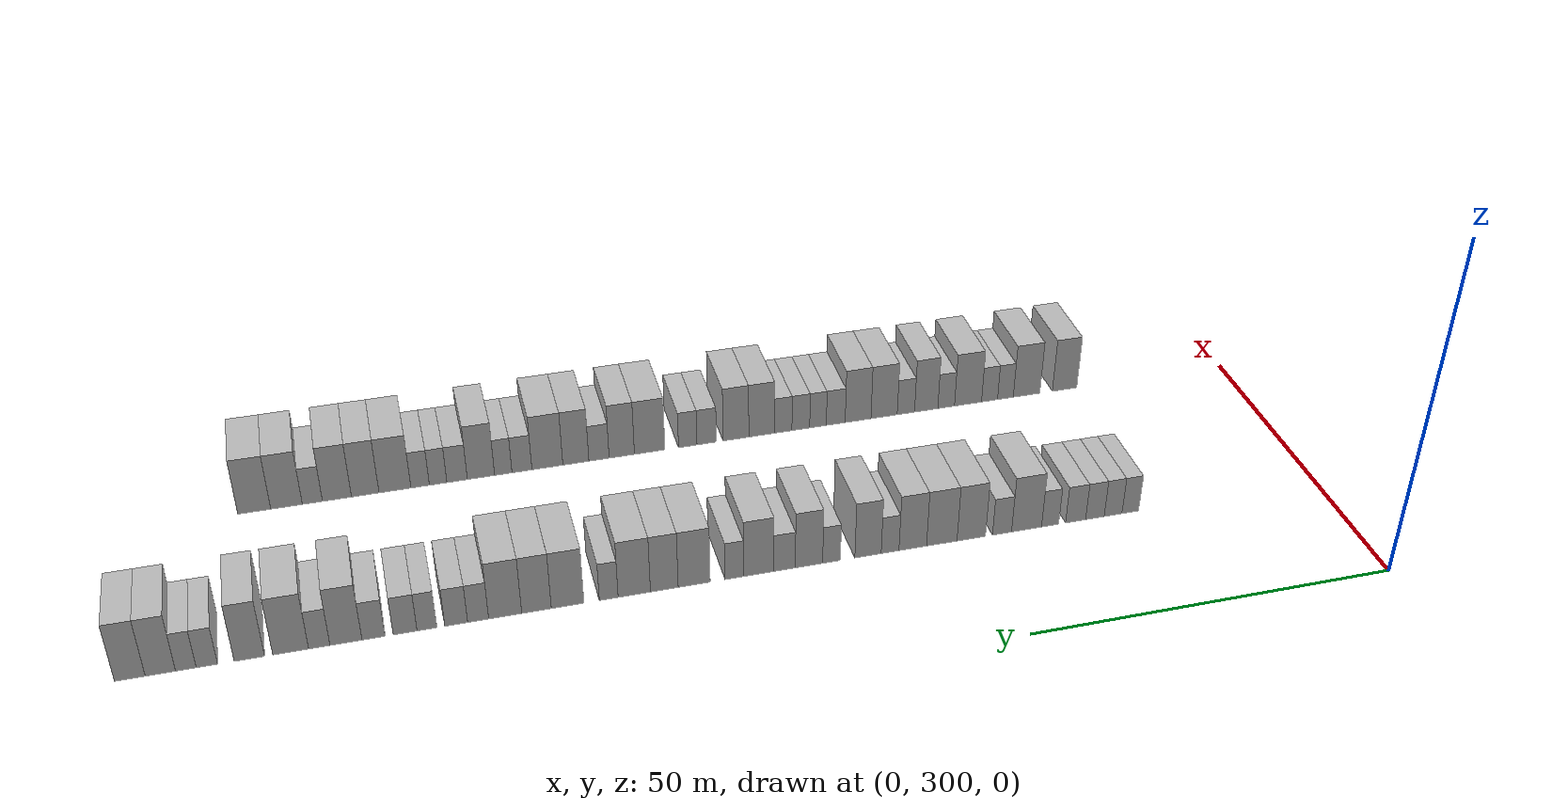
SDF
<sdf version="1.6">
 <world name="default">
  <model name="building_188">
   <static>1</static>
   <pose>25.0000 327.8488 0 0.000000 0.000000 0.000000</pose>
   <link name="link">
    <pose>0 0 3.00 0 0 0</pose>
    <collision name="collision"><geometry><box><size>10.0000 2.4442 6.0000</size></box></geometry></collision>
    <visual name="visual">
     <cast_shadows>0</cast_shadows>
     <geometry><box><size>10.0000 2.4442 6.0000</size></box></geometry>
     <material>
      <script>
       <uri>model://HANNAS_wall/materials/scripts</uri>
       <uri>model://HANNAS_wall/materials/textures</uri>
       <name>vrc/HANNAS_wall</name>
      </script>
     </material>
    </visual>
   </link>
  </model>
  <model name="building_189">
   <static>1</static>
   <pose>25.0000 330.3717 0 0.000000 0.000000 0.000000</pose>
   <link name="link">
    <pose>0 0 3.00 0 0 0</pose>
    <collision name="collision"><geometry><box><size>10.0000 2.6017 6.0000</size></box></geometry></collision>
    <visual name="visual">
     <cast_shadows>0</cast_shadows>
     <geometry><box><size>10.0000 2.6017 6.0000</size></box></geometry>
     <material>
      <script>
       <uri>model://HANNAS_wall/materials/scripts</uri>
       <uri>model://HANNAS_wall/materials/textures</uri>
       <name>vrc/HANNAS_wall</name>
      </script>
     </material>
    </visual>
   </link>
  </model>
  <model name="building_190">
   <static>1</static>
   <pose>25.0000 333.0318 0 0.000000 0.000000 0.000000</pose>
   <link name="link">
    <pose>0 0 3.00 0 0 0</pose>
    <collision name="collision"><geometry><box><size>10.0000 2.7185 6.0000</size></box></geometry></collision>
    <visual name="visual">
     <cast_shadows>0</cast_shadows>
     <geometry><box><size>10.0000 2.7185 6.0000</size></box></geometry>
     <material>
      <script>
       <uri>model://HANNAS_wall/materials/scripts</uri>
       <uri>model://HANNAS_wall/materials/textures</uri>
       <name>vrc/HANNAS_wall</name>
      </script>
     </material>
    </visual>
   </link>
  </model>
  <model name="building_191">
   <static>1</static>
   <pose>25.0000 335.8439 0 0.000000 0.000000 0.000000</pose>
   <link name="link">
    <pose>0 0 3.00 0 0 0</pose>
    <collision name="collision"><geometry><box><size>10.0000 2.9056 6.0000</size></box></geometry></collision>
    <visual name="visual">
     <cast_shadows>0</cast_shadows>
     <geometry><box><size>10.0000 2.9056 6.0000</size></box></geometry>
     <material>
      <script>
       <uri>model://HANNAS_wall/materials/scripts</uri>
       <uri>model://HANNAS_wall/materials/textures</uri>
       <name>vrc/HANNAS_wall</name>
      </script>
     </material>
    </visual>
   </link>
  </model>
  <model name="building_192">
   <static>1</static>
   <pose>25.0000 339.5345 0 0.000000 0.000000 0.000000</pose>
   <link name="link">
    <pose>0 0 3.00 0 0 0</pose>
    <collision name="collision"><geometry><box><size>10.0000 2.4756 6.0000</size></box></geometry></collision>
    <visual name="visual">
     <cast_shadows>0</cast_shadows>
     <geometry><box><size>10.0000 2.4756 6.0000</size></box></geometry>
     <material>
      <script>
       <uri>model://HANNAS_wall/materials/scripts</uri>
       <uri>model://HANNAS_wall/materials/textures</uri>
       <name>vrc/HANNAS_wall</name>
      </script>
     </material>
    </visual>
   </link>
  </model>
  <model name="building_193">
   <static>1</static>
   <pose>25.0000 342.9226 0 0.000000 0.000000 0.000000</pose>
   <link name="link">
    <pose>0 0 4.50 0 0 0</pose>
    <collision name="collision"><geometry><box><size>10.0000 4.3007 9.0000</size></box></geometry></collision>
    <visual name="visual">
     <cast_shadows>0</cast_shadows>
     <geometry><box><size>10.0000 4.3007 9.0000</size></box></geometry>
     <material>
      <script>
       <uri>model://HANNAS_wall/materials/scripts</uri>
       <uri>model://HANNAS_wall/materials/textures</uri>
       <name>vrc/HANNAS_wall</name>
      </script>
     </material>
    </visual>
   </link>
  </model>
  <model name="building_194">
   <static>1</static>
   <pose>25.0000 346.4377 0 0.000000 0.000000 0.000000</pose>
   <link name="link">
    <pose>0 0 3.00 0 0 0</pose>
    <collision name="collision"><geometry><box><size>10.0000 2.7295 6.0000</size></box></geometry></collision>
    <visual name="visual">
     <cast_shadows>0</cast_shadows>
     <geometry><box><size>10.0000 2.7295 6.0000</size></box></geometry>
     <material>
      <script>
       <uri>model://HANNAS_wall/materials/scripts</uri>
       <uri>model://HANNAS_wall/materials/textures</uri>
       <name>vrc/HANNAS_wall</name>
      </script>
     </material>
    </visual>
   </link>
  </model>
  <model name="building_195">
   <static>1</static>
   <pose>25.0000 350.8196 0 0.000000 0.000000 0.000000</pose>
   <link name="link">
    <pose>0 0 4.50 0 0 0</pose>
    <collision name="collision"><geometry><box><size>10.0000 4.0343 9.0000</size></box></geometry></collision>
    <visual name="visual">
     <cast_shadows>0</cast_shadows>
     <geometry><box><size>10.0000 4.0343 9.0000</size></box></geometry>
     <material>
      <script>
       <uri>model://HANNAS_wall/materials/scripts</uri>
       <uri>model://HANNAS_wall/materials/textures</uri>
       <name>vrc/HANNAS_wall</name>
      </script>
     </material>
    </visual>
   </link>
  </model>
  <model name="building_196">
   <static>1</static>
   <pose>25.0000 354.9863 0 0.000000 0.000000 0.000000</pose>
   <link name="link">
    <pose>0 0 4.50 0 0 0</pose>
    <collision name="collision"><geometry><box><size>10.0000 4.2991 9.0000</size></box></geometry></collision>
    <visual name="visual">
     <cast_shadows>0</cast_shadows>
     <geometry><box><size>10.0000 4.2991 9.0000</size></box></geometry>
     <material>
      <script>
       <uri>model://HANNAS_wall/materials/scripts</uri>
       <uri>model://HANNAS_wall/materials/textures</uri>
       <name>vrc/HANNAS_wall</name>
      </script>
     </material>
    </visual>
   </link>
  </model>
  <model name="building_197">
   <static>1</static>
   <pose>25.0000 359.0652 0 0.000000 0.000000 0.000000</pose>
   <link name="link">
    <pose>0 0 4.50 0 0 0</pose>
    <collision name="collision"><geometry><box><size>10.0000 3.8587 9.0000</size></box></geometry></collision>
    <visual name="visual">
     <cast_shadows>0</cast_shadows>
     <geometry><box><size>10.0000 3.8587 9.0000</size></box></geometry>
     <material>
      <script>
       <uri>model://HANNAS_wall/materials/scripts</uri>
       <uri>model://HANNAS_wall/materials/textures</uri>
       <name>vrc/HANNAS_wall</name>
      </script>
     </material>
    </visual>
   </link>
  </model>
  <model name="building_198">
   <static>1</static>
   <pose>25.0000 362.2316 0 0.000000 0.000000 0.000000</pose>
   <link name="link">
    <pose>0 0 3.00 0 0 0</pose>
    <collision name="collision"><geometry><box><size>10.0000 2.4742 6.0000</size></box></geometry></collision>
    <visual name="visual">
     <cast_shadows>0</cast_shadows>
     <geometry><box><size>10.0000 2.4742 6.0000</size></box></geometry>
     <material>
      <script>
       <uri>model://HANNAS_wall/materials/scripts</uri>
       <uri>model://HANNAS_wall/materials/textures</uri>
       <name>vrc/HANNAS_wall</name>
      </script>
     </material>
    </visual>
   </link>
  </model>
  <model name="building_199">
   <static>1</static>
   <pose>25.0000 365.2903 0 0.000000 0.000000 0.000000</pose>
   <link name="link">
    <pose>0 0 4.50 0 0 0</pose>
    <collision name="collision"><geometry><box><size>10.0000 3.6432 9.0000</size></box></geometry></collision>
    <visual name="visual">
     <cast_shadows>0</cast_shadows>
     <geometry><box><size>10.0000 3.6432 9.0000</size></box></geometry>
     <material>
      <script>
       <uri>model://HANNAS_wall/materials/scripts</uri>
       <uri>model://HANNAS_wall/materials/textures</uri>
       <name>vrc/HANNAS_wall</name>
      </script>
     </material>
    </visual>
   </link>
  </model>
  <model name="building_200">
   <static>1</static>
   <pose>25.0000 370.3265 0 0.000000 0.000000 0.000000</pose>
   <link name="link">
    <pose>0 0 3.00 0 0 0</pose>
    <collision name="collision"><geometry><box><size>10.0000 2.4291 6.0000</size></box></geometry></collision>
    <visual name="visual">
     <cast_shadows>0</cast_shadows>
     <geometry><box><size>10.0000 2.4291 6.0000</size></box></geometry>
     <material>
      <script>
       <uri>model://HANNAS_wall/materials/scripts</uri>
       <uri>model://HANNAS_wall/materials/textures</uri>
       <name>vrc/HANNAS_wall</name>
      </script>
     </material>
    </visual>
   </link>
  </model>
  <model name="building_201">
   <static>1</static>
   <pose>25.0000 373.4064 0 0.000000 0.000000 0.000000</pose>
   <link name="link">
    <pose>0 0 4.50 0 0 0</pose>
    <collision name="collision"><geometry><box><size>10.0000 3.7307 9.0000</size></box></geometry></collision>
    <visual name="visual">
     <cast_shadows>0</cast_shadows>
     <geometry><box><size>10.0000 3.7307 9.0000</size></box></geometry>
     <material>
      <script>
       <uri>model://HANNAS_wall/materials/scripts</uri>
       <uri>model://HANNAS_wall/materials/textures</uri>
       <name>vrc/HANNAS_wall</name>
      </script>
     </material>
    </visual>
   </link>
  </model>
  <model name="building_202">
   <static>1</static>
   <pose>25.0000 376.7271 0 0.000000 0.000000 0.000000</pose>
   <link name="link">
    <pose>0 0 3.00 0 0 0</pose>
    <collision name="collision"><geometry><box><size>10.0000 2.9107 6.0000</size></box></geometry></collision>
    <visual name="visual">
     <cast_shadows>0</cast_shadows>
     <geometry><box><size>10.0000 2.9107 6.0000</size></box></geometry>
     <material>
      <script>
       <uri>model://HANNAS_wall/materials/scripts</uri>
       <uri>model://HANNAS_wall/materials/textures</uri>
       <name>vrc/HANNAS_wall</name>
      </script>
     </material>
    </visual>
   </link>
  </model>
  <model name="building_203">
   <static>1</static>
   <pose>25.0000 380.2201 0 0.000000 0.000000 0.000000</pose>
   <link name="link">
    <pose>0 0 4.50 0 0 0</pose>
    <collision name="collision"><geometry><box><size>10.0000 4.0753 9.0000</size></box></geometry></collision>
    <visual name="visual">
     <cast_shadows>0</cast_shadows>
     <geometry><box><size>10.0000 4.0753 9.0000</size></box></geometry>
     <material>
      <script>
       <uri>model://HANNAS_wall/materials/scripts</uri>
       <uri>model://HANNAS_wall/materials/textures</uri>
       <name>vrc/HANNAS_wall</name>
      </script>
     </material>
    </visual>
   </link>
  </model>
  <model name="building_204">
   <static>1</static>
   <pose>25.0000 383.5046 0 0.000000 0.000000 0.000000</pose>
   <link name="link">
    <pose>0 0 3.00 0 0 0</pose>
    <collision name="collision"><geometry><box><size>10.0000 2.4938 6.0000</size></box></geometry></collision>
    <visual name="visual">
     <cast_shadows>0</cast_shadows>
     <geometry><box><size>10.0000 2.4938 6.0000</size></box></geometry>
     <material>
      <script>
       <uri>model://HANNAS_wall/materials/scripts</uri>
       <uri>model://HANNAS_wall/materials/textures</uri>
       <name>vrc/HANNAS_wall</name>
      </script>
     </material>
    </visual>
   </link>
  </model>
  <model name="building_205">
   <static>1</static>
   <pose>25.0000 388.8806 0 0.000000 0.000000 0.000000</pose>
   <link name="link">
    <pose>0 0 4.50 0 0 0</pose>
    <collision name="collision"><geometry><box><size>10.0000 4.2582 9.0000</size></box></geometry></collision>
    <visual name="visual">
     <cast_shadows>0</cast_shadows>
     <geometry><box><size>10.0000 4.2582 9.0000</size></box></geometry>
     <material>
      <script>
       <uri>model://HANNAS_wall/materials/scripts</uri>
       <uri>model://HANNAS_wall/materials/textures</uri>
       <name>vrc/HANNAS_wall</name>
      </script>
     </material>
    </visual>
   </link>
  </model>
  <model name="building_206">
   <static>1</static>
   <pose>25.0000 392.8453 0 0.000000 0.000000 0.000000</pose>
   <link name="link">
    <pose>0 0 4.50 0 0 0</pose>
    <collision name="collision"><geometry><box><size>10.0000 3.6713 9.0000</size></box></geometry></collision>
    <visual name="visual">
     <cast_shadows>0</cast_shadows>
     <geometry><box><size>10.0000 3.6713 9.0000</size></box></geometry>
     <material>
      <script>
       <uri>model://HANNAS_wall/materials/scripts</uri>
       <uri>model://HANNAS_wall/materials/textures</uri>
       <name>vrc/HANNAS_wall</name>
      </script>
     </material>
    </visual>
   </link>
  </model>
  <model name="building_207">
   <static>1</static>
   <pose>25.0000 396.8028 0 0.000000 0.000000 0.000000</pose>
   <link name="link">
    <pose>0 0 4.50 0 0 0</pose>
    <collision name="collision"><geometry><box><size>10.0000 4.2437 9.0000</size></box></geometry></collision>
    <visual name="visual">
     <cast_shadows>0</cast_shadows>
     <geometry><box><size>10.0000 4.2437 9.0000</size></box></geometry>
     <material>
      <script>
       <uri>model://HANNAS_wall/materials/scripts</uri>
       <uri>model://HANNAS_wall/materials/textures</uri>
       <name>vrc/HANNAS_wall</name>
      </script>
     </material>
    </visual>
   </link>
  </model>
  <model name="building_208">
   <static>1</static>
   <pose>25.0000 400.1499 0 0.000000 0.000000 0.000000</pose>
   <link name="link">
    <pose>0 0 3.00 0 0 0</pose>
    <collision name="collision"><geometry><box><size>10.0000 2.4505 6.0000</size></box></geometry></collision>
    <visual name="visual">
     <cast_shadows>0</cast_shadows>
     <geometry><box><size>10.0000 2.4505 6.0000</size></box></geometry>
     <material>
      <script>
       <uri>model://HANNAS_wall/materials/scripts</uri>
       <uri>model://HANNAS_wall/materials/textures</uri>
       <name>vrc/HANNAS_wall</name>
      </script>
     </material>
    </visual>
   </link>
  </model>
  <model name="building_209">
   <static>1</static>
   <pose>25.0000 405.4842 0 0.000000 0.000000 0.000000</pose>
   <link name="link">
    <pose>0 0 4.50 0 0 0</pose>
    <collision name="collision"><geometry><box><size>10.0000 4.2182 9.0000</size></box></geometry></collision>
    <visual name="visual">
     <cast_shadows>0</cast_shadows>
     <geometry><box><size>10.0000 4.2182 9.0000</size></box></geometry>
     <material>
      <script>
       <uri>model://HANNAS_wall/materials/scripts</uri>
       <uri>model://HANNAS_wall/materials/textures</uri>
       <name>vrc/HANNAS_wall</name>
      </script>
     </material>
    </visual>
   </link>
  </model>
  <model name="building_210">
   <static>1</static>
   <pose>25.0000 409.4945 0 0.000000 0.000000 0.000000</pose>
   <link name="link">
    <pose>0 0 4.50 0 0 0</pose>
    <collision name="collision"><geometry><box><size>10.0000 3.8022 9.0000</size></box></geometry></collision>
    <visual name="visual">
     <cast_shadows>0</cast_shadows>
     <geometry><box><size>10.0000 3.8022 9.0000</size></box></geometry>
     <material>
      <script>
       <uri>model://HANNAS_wall/materials/scripts</uri>
       <uri>model://HANNAS_wall/materials/textures</uri>
       <name>vrc/HANNAS_wall</name>
      </script>
     </material>
    </visual>
   </link>
  </model>
  <model name="building_211">
   <static>1</static>
   <pose>25.0000 413.5042 0 0.000000 0.000000 0.000000</pose>
   <link name="link">
    <pose>0 0 4.50 0 0 0</pose>
    <collision name="collision"><geometry><box><size>10.0000 4.2173 9.0000</size></box></geometry></collision>
    <visual name="visual">
     <cast_shadows>0</cast_shadows>
     <geometry><box><size>10.0000 4.2173 9.0000</size></box></geometry>
     <material>
      <script>
       <uri>model://HANNAS_wall/materials/scripts</uri>
       <uri>model://HANNAS_wall/materials/textures</uri>
       <name>vrc/HANNAS_wall</name>
      </script>
     </material>
    </visual>
   </link>
  </model>
  <model name="building_212">
   <static>1</static>
   <pose>25.0000 416.9466 0 0.000000 0.000000 0.000000</pose>
   <link name="link">
    <pose>0 0 3.00 0 0 0</pose>
    <collision name="collision"><geometry><box><size>10.0000 2.6676 6.0000</size></box></geometry></collision>
    <visual name="visual">
     <cast_shadows>0</cast_shadows>
     <geometry><box><size>10.0000 2.6676 6.0000</size></box></geometry>
     <material>
      <script>
       <uri>model://HANNAS_wall/materials/scripts</uri>
       <uri>model://HANNAS_wall/materials/textures</uri>
       <name>vrc/HANNAS_wall</name>
      </script>
     </material>
    </visual>
   </link>
  </model>
  <model name="building_213">
   <static>1</static>
   <pose>25.0000 419.7192 0 0.000000 0.000000 0.000000</pose>
   <link name="link">
    <pose>0 0 3.00 0 0 0</pose>
    <collision name="collision"><geometry><box><size>10.0000 2.8775 6.0000</size></box></geometry></collision>
    <visual name="visual">
     <cast_shadows>0</cast_shadows>
     <geometry><box><size>10.0000 2.8775 6.0000</size></box></geometry>
     <material>
      <script>
       <uri>model://HANNAS_wall/materials/scripts</uri>
       <uri>model://HANNAS_wall/materials/textures</uri>
       <name>vrc/HANNAS_wall</name>
      </script>
     </material>
    </visual>
   </link>
  </model>
  <model name="building_214">
   <static>1</static>
   <pose>25.0000 423.4018 0 0.000000 0.000000 0.000000</pose>
   <link name="link">
    <pose>0 0 3.00 0 0 0</pose>
    <collision name="collision"><geometry><box><size>10.0000 2.4876 6.0000</size></box></geometry></collision>
    <visual name="visual">
     <cast_shadows>0</cast_shadows>
     <geometry><box><size>10.0000 2.4876 6.0000</size></box></geometry>
     <material>
      <script>
       <uri>model://HANNAS_wall/materials/scripts</uri>
       <uri>model://HANNAS_wall/materials/textures</uri>
       <name>vrc/HANNAS_wall</name>
      </script>
     </material>
    </visual>
   </link>
  </model>
  <model name="building_215">
   <static>1</static>
   <pose>25.0000 426.1326 0 0.000000 0.000000 0.000000</pose>
   <link name="link">
    <pose>0 0 3.00 0 0 0</pose>
    <collision name="collision"><geometry><box><size>10.0000 2.9740 6.0000</size></box></geometry></collision>
    <visual name="visual">
     <cast_shadows>0</cast_shadows>
     <geometry><box><size>10.0000 2.9740 6.0000</size></box></geometry>
     <material>
      <script>
       <uri>model://HANNAS_wall/materials/scripts</uri>
       <uri>model://HANNAS_wall/materials/textures</uri>
       <name>vrc/HANNAS_wall</name>
      </script>
     </material>
    </visual>
   </link>
  </model>
  <model name="building_216">
   <static>1</static>
   <pose>25.0000 430.0551 0 0.000000 0.000000 0.000000</pose>
   <link name="link">
    <pose>0 0 3.00 0 0 0</pose>
    <collision name="collision"><geometry><box><size>10.0000 2.8710 6.0000</size></box></geometry></collision>
    <visual name="visual">
     <cast_shadows>0</cast_shadows>
     <geometry><box><size>10.0000 2.8710 6.0000</size></box></geometry>
     <material>
      <script>
       <uri>model://HANNAS_wall/materials/scripts</uri>
       <uri>model://HANNAS_wall/materials/textures</uri>
       <name>vrc/HANNAS_wall</name>
      </script>
     </material>
    </visual>
   </link>
  </model>
  <model name="building_217">
   <static>1</static>
   <pose>25.0000 433.4639 0 0.000000 0.000000 0.000000</pose>
   <link name="link">
    <pose>0 0 4.50 0 0 0</pose>
    <collision name="collision"><geometry><box><size>10.0000 3.9467 9.0000</size></box></geometry></collision>
    <visual name="visual">
     <cast_shadows>0</cast_shadows>
     <geometry><box><size>10.0000 3.9467 9.0000</size></box></geometry>
     <material>
      <script>
       <uri>model://HANNAS_wall/materials/scripts</uri>
       <uri>model://HANNAS_wall/materials/textures</uri>
       <name>vrc/HANNAS_wall</name>
      </script>
     </material>
    </visual>
   </link>
  </model>
  <model name="building_218">
   <static>1</static>
   <pose>25.0000 436.7431 0 0.000000 0.000000 0.000000</pose>
   <link name="link">
    <pose>0 0 3.00 0 0 0</pose>
    <collision name="collision"><geometry><box><size>10.0000 2.6116 6.0000</size></box></geometry></collision>
    <visual name="visual">
     <cast_shadows>0</cast_shadows>
     <geometry><box><size>10.0000 2.6116 6.0000</size></box></geometry>
     <material>
      <script>
       <uri>model://HANNAS_wall/materials/scripts</uri>
       <uri>model://HANNAS_wall/materials/textures</uri>
       <name>vrc/HANNAS_wall</name>
      </script>
     </material>
    </visual>
   </link>
  </model>
  <model name="building_219">
   <static>1</static>
   <pose>25.0000 440.2322 0 0.000000 0.000000 0.000000</pose>
   <link name="link">
    <pose>0 0 4.50 0 0 0</pose>
    <collision name="collision"><geometry><box><size>10.0000 4.3666 9.0000</size></box></geometry></collision>
    <visual name="visual">
     <cast_shadows>0</cast_shadows>
     <geometry><box><size>10.0000 4.3666 9.0000</size></box></geometry>
     <material>
      <script>
       <uri>model://HANNAS_wall/materials/scripts</uri>
       <uri>model://HANNAS_wall/materials/textures</uri>
       <name>vrc/HANNAS_wall</name>
      </script>
     </material>
    </visual>
   </link>
  </model>
  <model name="building_220">
   <static>1</static>
   <pose>25.0000 445.2457 0 0.000000 0.000000 0.000000</pose>
   <link name="link">
    <pose>0 0 4.50 0 0 0</pose>
    <collision name="collision"><geometry><box><size>10.0000 3.6605 9.0000</size></box></geometry></collision>
    <visual name="visual">
     <cast_shadows>0</cast_shadows>
     <geometry><box><size>10.0000 3.6605 9.0000</size></box></geometry>
     <material>
      <script>
       <uri>model://HANNAS_wall/materials/scripts</uri>
       <uri>model://HANNAS_wall/materials/textures</uri>
       <name>vrc/HANNAS_wall</name>
      </script>
     </material>
    </visual>
   </link>
  </model>
  <model name="building_221">
   <static>1</static>
   <pose>25.0000 450.3532 0 0.000000 0.000000 0.000000</pose>
   <link name="link">
    <pose>0 0 3.00 0 0 0</pose>
    <collision name="collision"><geometry><box><size>10.0000 2.5545 6.0000</size></box></geometry></collision>
    <visual name="visual">
     <cast_shadows>0</cast_shadows>
     <geometry><box><size>10.0000 2.5545 6.0000</size></box></geometry>
     <material>
      <script>
       <uri>model://HANNAS_wall/materials/scripts</uri>
       <uri>model://HANNAS_wall/materials/textures</uri>
       <name>vrc/HANNAS_wall</name>
      </script>
     </material>
    </visual>
   </link>
  </model>
  <model name="building_222">
   <static>1</static>
   <pose>25.0000 452.8534 0 0.000000 0.000000 0.000000</pose>
   <link name="link">
    <pose>0 0 3.00 0 0 0</pose>
    <collision name="collision"><geometry><box><size>10.0000 2.4459 6.0000</size></box></geometry></collision>
    <visual name="visual">
     <cast_shadows>0</cast_shadows>
     <geometry><box><size>10.0000 2.4459 6.0000</size></box></geometry>
     <material>
      <script>
       <uri>model://HANNAS_wall/materials/scripts</uri>
       <uri>model://HANNAS_wall/materials/textures</uri>
       <name>vrc/HANNAS_wall</name>
      </script>
     </material>
    </visual>
   </link>
  </model>
  <model name="building_223">
   <static>1</static>
   <pose>25.0000 455.8769 0 0.000000 0.000000 0.000000</pose>
   <link name="link">
    <pose>0 0 4.50 0 0 0</pose>
    <collision name="collision"><geometry><box><size>10.0000 3.6011 9.0000</size></box></geometry></collision>
    <visual name="visual">
     <cast_shadows>0</cast_shadows>
     <geometry><box><size>10.0000 3.6011 9.0000</size></box></geometry>
     <material>
      <script>
       <uri>model://HANNAS_wall/materials/scripts</uri>
       <uri>model://HANNAS_wall/materials/textures</uri>
       <name>vrc/HANNAS_wall</name>
      </script>
     </material>
    </visual>
   </link>
  </model>
  <model name="building_224">
   <static>1</static>
   <pose>25.0000 459.4851 0 0.000000 0.000000 0.000000</pose>
   <link name="link">
    <pose>0 0 4.50 0 0 0</pose>
    <collision name="collision"><geometry><box><size>10.0000 3.6153 9.0000</size></box></geometry></collision>
    <visual name="visual">
     <cast_shadows>0</cast_shadows>
     <geometry><box><size>10.0000 3.6153 9.0000</size></box></geometry>
     <material>
      <script>
       <uri>model://HANNAS_wall/materials/scripts</uri>
       <uri>model://HANNAS_wall/materials/textures</uri>
       <name>vrc/HANNAS_wall</name>
      </script>
     </material>
    </visual>
   </link>
  </model>
  <model name="building_429">
   <static>1</static>
   <pose>55.0000 325.3274 0 0.000000 0.000000 0.000000</pose>
   <link name="link">
    <pose>0 0 4.50 0 0 0</pose>
    <collision name="collision"><geometry><box><size>10.0000 3.8958 9.0000</size></box></geometry></collision>
    <visual name="visual">
     <cast_shadows>0</cast_shadows>
     <geometry><box><size>10.0000 3.8958 9.0000</size></box></geometry>
     <material>
      <script>
       <uri>model://HANNAS_wall/materials/scripts</uri>
       <uri>model://HANNAS_wall/materials/textures</uri>
       <name>vrc/HANNAS_wall</name>
      </script>
     </material>
    </visual>
   </link>
  </model>
  <model name="building_430">
   <static>1</static>
   <pose>55.0000 331.3826 0 0.000000 0.000000 0.000000</pose>
   <link name="link">
    <pose>0 0 4.50 0 0 0</pose>
    <collision name="collision"><geometry><box><size>10.0000 4.2146 9.0000</size></box></geometry></collision>
    <visual name="visual">
     <cast_shadows>0</cast_shadows>
     <geometry><box><size>10.0000 4.2146 9.0000</size></box></geometry>
     <material>
      <script>
       <uri>model://HANNAS_wall/materials/scripts</uri>
       <uri>model://HANNAS_wall/materials/textures</uri>
       <name>vrc/HANNAS_wall</name>
      </script>
     </material>
    </visual>
   </link>
  </model>
  <model name="building_431">
   <static>1</static>
   <pose>55.0000 334.7327 0 0.000000 0.000000 0.000000</pose>
   <link name="link">
    <pose>0 0 3.00 0 0 0</pose>
    <collision name="collision"><geometry><box><size>10.0000 2.4854 6.0000</size></box></geometry></collision>
    <visual name="visual">
     <cast_shadows>0</cast_shadows>
     <geometry><box><size>10.0000 2.4854 6.0000</size></box></geometry>
     <material>
      <script>
       <uri>model://HANNAS_wall/materials/scripts</uri>
       <uri>model://HANNAS_wall/materials/textures</uri>
       <name>vrc/HANNAS_wall</name>
      </script>
     </material>
    </visual>
   </link>
  </model>
  <model name="building_432">
   <static>1</static>
   <pose>55.0000 337.2313 0 0.000000 0.000000 0.000000</pose>
   <link name="link">
    <pose>0 0 3.00 0 0 0</pose>
    <collision name="collision"><geometry><box><size>10.0000 2.5119 6.0000</size></box></geometry></collision>
    <visual name="visual">
     <cast_shadows>0</cast_shadows>
     <geometry><box><size>10.0000 2.5119 6.0000</size></box></geometry>
     <material>
      <script>
       <uri>model://HANNAS_wall/materials/scripts</uri>
       <uri>model://HANNAS_wall/materials/textures</uri>
       <name>vrc/HANNAS_wall</name>
      </script>
     </material>
    </visual>
   </link>
  </model>
  <model name="building_433">
   <static>1</static>
   <pose>55.0000 340.6063 0 0.000000 0.000000 0.000000</pose>
   <link name="link">
    <pose>0 0 4.50 0 0 0</pose>
    <collision name="collision"><geometry><box><size>10.0000 4.2381 9.0000</size></box></geometry></collision>
    <visual name="visual">
     <cast_shadows>0</cast_shadows>
     <geometry><box><size>10.0000 4.2381 9.0000</size></box></geometry>
     <material>
      <script>
       <uri>model://HANNAS_wall/materials/scripts</uri>
       <uri>model://HANNAS_wall/materials/textures</uri>
       <name>vrc/HANNAS_wall</name>
      </script>
     </material>
    </visual>
   </link>
  </model>
  <model name="building_434">
   <static>1</static>
   <pose>55.0000 344.0225 0 0.000000 0.000000 0.000000</pose>
   <link name="link">
    <pose>0 0 3.00 0 0 0</pose>
    <collision name="collision"><geometry><box><size>10.0000 2.5941 6.0000</size></box></geometry></collision>
    <visual name="visual">
     <cast_shadows>0</cast_shadows>
     <geometry><box><size>10.0000 2.5941 6.0000</size></box></geometry>
     <material>
      <script>
       <uri>model://HANNAS_wall/materials/scripts</uri>
       <uri>model://HANNAS_wall/materials/textures</uri>
       <name>vrc/HANNAS_wall</name>
      </script>
     </material>
    </visual>
   </link>
  </model>
  <model name="building_435">
   <static>1</static>
   <pose>55.0000 347.1265 0 0.000000 0.000000 0.000000</pose>
   <link name="link">
    <pose>0 0 4.50 0 0 0</pose>
    <collision name="collision"><geometry><box><size>10.0000 3.6140 9.0000</size></box></geometry></collision>
    <visual name="visual">
     <cast_shadows>0</cast_shadows>
     <geometry><box><size>10.0000 3.6140 9.0000</size></box></geometry>
     <material>
      <script>
       <uri>model://HANNAS_wall/materials/scripts</uri>
       <uri>model://HANNAS_wall/materials/textures</uri>
       <name>vrc/HANNAS_wall</name>
      </script>
     </material>
    </visual>
   </link>
  </model>
  <model name="building_436">
   <static>1</static>
   <pose>55.0000 350.2684 0 0.000000 0.000000 0.000000</pose>
   <link name="link">
    <pose>0 0 3.00 0 0 0</pose>
    <collision name="collision"><geometry><box><size>10.0000 2.6698 6.0000</size></box></geometry></collision>
    <visual name="visual">
     <cast_shadows>0</cast_shadows>
     <geometry><box><size>10.0000 2.6698 6.0000</size></box></geometry>
     <material>
      <script>
       <uri>model://HANNAS_wall/materials/scripts</uri>
       <uri>model://HANNAS_wall/materials/textures</uri>
       <name>vrc/HANNAS_wall</name>
      </script>
     </material>
    </visual>
   </link>
  </model>
  <model name="building_437">
   <static>1</static>
   <pose>55.0000 353.6176 0 0.000000 0.000000 0.000000</pose>
   <link name="link">
    <pose>0 0 4.50 0 0 0</pose>
    <collision name="collision"><geometry><box><size>10.0000 4.0284 9.0000</size></box></geometry></collision>
    <visual name="visual">
     <cast_shadows>0</cast_shadows>
     <geometry><box><size>10.0000 4.0284 9.0000</size></box></geometry>
     <material>
      <script>
       <uri>model://HANNAS_wall/materials/scripts</uri>
       <uri>model://HANNAS_wall/materials/textures</uri>
       <name>vrc/HANNAS_wall</name>
      </script>
     </material>
    </visual>
   </link>
  </model>
  <model name="building_438">
   <static>1</static>
   <pose>55.0000 357.6001 0 0.000000 0.000000 0.000000</pose>
   <link name="link">
    <pose>0 0 4.50 0 0 0</pose>
    <collision name="collision"><geometry><box><size>10.0000 3.9366 9.0000</size></box></geometry></collision>
    <visual name="visual">
     <cast_shadows>0</cast_shadows>
     <geometry><box><size>10.0000 3.9366 9.0000</size></box></geometry>
     <material>
      <script>
       <uri>model://HANNAS_wall/materials/scripts</uri>
       <uri>model://HANNAS_wall/materials/textures</uri>
       <name>vrc/HANNAS_wall</name>
      </script>
     </material>
    </visual>
   </link>
  </model>
  <model name="building_439">
   <static>1</static>
   <pose>55.0000 360.9954 0 0.000000 0.000000 0.000000</pose>
   <link name="link">
    <pose>0 0 3.00 0 0 0</pose>
    <collision name="collision"><geometry><box><size>10.0000 2.8540 6.0000</size></box></geometry></collision>
    <visual name="visual">
     <cast_shadows>0</cast_shadows>
     <geometry><box><size>10.0000 2.8540 6.0000</size></box></geometry>
     <material>
      <script>
       <uri>model://HANNAS_wall/materials/scripts</uri>
       <uri>model://HANNAS_wall/materials/textures</uri>
       <name>vrc/HANNAS_wall</name>
      </script>
     </material>
    </visual>
   </link>
  </model>
  <model name="building_440">
   <static>1</static>
   <pose>55.0000 363.6818 0 0.000000 0.000000 0.000000</pose>
   <link name="link">
    <pose>0 0 3.00 0 0 0</pose>
    <collision name="collision"><geometry><box><size>10.0000 2.5188 6.0000</size></box></geometry></collision>
    <visual name="visual">
     <cast_shadows>0</cast_shadows>
     <geometry><box><size>10.0000 2.5188 6.0000</size></box></geometry>
     <material>
      <script>
       <uri>model://HANNAS_wall/materials/scripts</uri>
       <uri>model://HANNAS_wall/materials/textures</uri>
       <name>vrc/HANNAS_wall</name>
      </script>
     </material>
    </visual>
   </link>
  </model>
  <model name="building_441">
   <static>1</static>
   <pose>55.0000 366.2816 0 0.000000 0.000000 0.000000</pose>
   <link name="link">
    <pose>0 0 3.00 0 0 0</pose>
    <collision name="collision"><geometry><box><size>10.0000 2.6807 6.0000</size></box></geometry></collision>
    <visual name="visual">
     <cast_shadows>0</cast_shadows>
     <geometry><box><size>10.0000 2.6807 6.0000</size></box></geometry>
     <material>
      <script>
       <uri>model://HANNAS_wall/materials/scripts</uri>
       <uri>model://HANNAS_wall/materials/textures</uri>
       <name>vrc/HANNAS_wall</name>
      </script>
     </material>
    </visual>
   </link>
  </model>
  <model name="building_442">
   <static>1</static>
   <pose>55.0000 368.9174 0 0.000000 0.000000 0.000000</pose>
   <link name="link">
    <pose>0 0 3.00 0 0 0</pose>
    <collision name="collision"><geometry><box><size>10.0000 2.5910 6.0000</size></box></geometry></collision>
    <visual name="visual">
     <cast_shadows>0</cast_shadows>
     <geometry><box><size>10.0000 2.5910 6.0000</size></box></geometry>
     <material>
      <script>
       <uri>model://HANNAS_wall/materials/scripts</uri>
       <uri>model://HANNAS_wall/materials/textures</uri>
       <name>vrc/HANNAS_wall</name>
      </script>
     </material>
    </visual>
   </link>
  </model>
  <model name="building_443">
   <static>1</static>
   <pose>55.0000 372.1372 0 0.000000 0.000000 0.000000</pose>
   <link name="link">
    <pose>0 0 4.50 0 0 0</pose>
    <collision name="collision"><geometry><box><size>10.0000 3.8485 9.0000</size></box></geometry></collision>
    <visual name="visual">
     <cast_shadows>0</cast_shadows>
     <geometry><box><size>10.0000 3.8485 9.0000</size></box></geometry>
     <material>
      <script>
       <uri>model://HANNAS_wall/materials/scripts</uri>
       <uri>model://HANNAS_wall/materials/textures</uri>
       <name>vrc/HANNAS_wall</name>
      </script>
     </material>
    </visual>
   </link>
  </model>
  <model name="building_444">
   <static>1</static>
   <pose>55.0000 375.9699 0 0.000000 0.000000 0.000000</pose>
   <link name="link">
    <pose>0 0 4.50 0 0 0</pose>
    <collision name="collision"><geometry><box><size>10.0000 3.8169 9.0000</size></box></geometry></collision>
    <visual name="visual">
     <cast_shadows>0</cast_shadows>
     <geometry><box><size>10.0000 3.8169 9.0000</size></box></geometry>
     <material>
      <script>
       <uri>model://HANNAS_wall/materials/scripts</uri>
       <uri>model://HANNAS_wall/materials/textures</uri>
       <name>vrc/HANNAS_wall</name>
      </script>
     </material>
    </visual>
   </link>
  </model>
  <model name="building_445">
   <static>1</static>
   <pose>55.0000 380.3054 0 0.000000 0.000000 0.000000</pose>
   <link name="link">
    <pose>0 0 3.00 0 0 0</pose>
    <collision name="collision"><geometry><box><size>10.0000 2.8543 6.0000</size></box></geometry></collision>
    <visual name="visual">
     <cast_shadows>0</cast_shadows>
     <geometry><box><size>10.0000 2.8543 6.0000</size></box></geometry>
     <material>
      <script>
       <uri>model://HANNAS_wall/materials/scripts</uri>
       <uri>model://HANNAS_wall/materials/textures</uri>
       <name>vrc/HANNAS_wall</name>
      </script>
     </material>
    </visual>
   </link>
  </model>
  <model name="building_446">
   <static>1</static>
   <pose>55.0000 383.0871 0 0.000000 0.000000 0.000000</pose>
   <link name="link">
    <pose>0 0 3.00 0 0 0</pose>
    <collision name="collision"><geometry><box><size>10.0000 2.7091 6.0000</size></box></geometry></collision>
    <visual name="visual">
     <cast_shadows>0</cast_shadows>
     <geometry><box><size>10.0000 2.7091 6.0000</size></box></geometry>
     <material>
      <script>
       <uri>model://HANNAS_wall/materials/scripts</uri>
       <uri>model://HANNAS_wall/materials/textures</uri>
       <name>vrc/HANNAS_wall</name>
      </script>
     </material>
    </visual>
   </link>
  </model>
  <model name="building_447">
   <static>1</static>
   <pose>55.0000 388.6547 0 0.000000 0.000000 0.000000</pose>
   <link name="link">
    <pose>0 0 4.50 0 0 0</pose>
    <collision name="collision"><geometry><box><size>10.0000 4.4261 9.0000</size></box></geometry></collision>
    <visual name="visual">
     <cast_shadows>0</cast_shadows>
     <geometry><box><size>10.0000 4.4261 9.0000</size></box></geometry>
     <material>
      <script>
       <uri>model://HANNAS_wall/materials/scripts</uri>
       <uri>model://HANNAS_wall/materials/textures</uri>
       <name>vrc/HANNAS_wall</name>
      </script>
     </material>
    </visual>
   </link>
  </model>
  <model name="building_448">
   <static>1</static>
   <pose>55.0000 392.6970 0 0.000000 0.000000 0.000000</pose>
   <link name="link">
    <pose>0 0 4.50 0 0 0</pose>
    <collision name="collision"><geometry><box><size>10.0000 3.6585 9.0000</size></box></geometry></collision>
    <visual name="visual">
     <cast_shadows>0</cast_shadows>
     <geometry><box><size>10.0000 3.6585 9.0000</size></box></geometry>
     <material>
      <script>
       <uri>model://HANNAS_wall/materials/scripts</uri>
       <uri>model://HANNAS_wall/materials/textures</uri>
       <name>vrc/HANNAS_wall</name>
      </script>
     </material>
    </visual>
   </link>
  </model>
  <model name="building_449">
   <static>1</static>
   <pose>55.0000 395.9831 0 0.000000 0.000000 0.000000</pose>
   <link name="link">
    <pose>0 0 3.00 0 0 0</pose>
    <collision name="collision"><geometry><box><size>10.0000 2.9136 6.0000</size></box></geometry></collision>
    <visual name="visual">
     <cast_shadows>0</cast_shadows>
     <geometry><box><size>10.0000 2.9136 6.0000</size></box></geometry>
     <material>
      <script>
       <uri>model://HANNAS_wall/materials/scripts</uri>
       <uri>model://HANNAS_wall/materials/textures</uri>
       <name>vrc/HANNAS_wall</name>
      </script>
     </material>
    </visual>
   </link>
  </model>
  <model name="building_450">
   <static>1</static>
   <pose>55.0000 399.3028 0 0.000000 0.000000 0.000000</pose>
   <link name="link">
    <pose>0 0 4.50 0 0 0</pose>
    <collision name="collision"><geometry><box><size>10.0000 3.7258 9.0000</size></box></geometry></collision>
    <visual name="visual">
     <cast_shadows>0</cast_shadows>
     <geometry><box><size>10.0000 3.7258 9.0000</size></box></geometry>
     <material>
      <script>
       <uri>model://HANNAS_wall/materials/scripts</uri>
       <uri>model://HANNAS_wall/materials/textures</uri>
       <name>vrc/HANNAS_wall</name>
      </script>
     </material>
    </visual>
   </link>
  </model>
  <model name="building_451">
   <static>1</static>
   <pose>55.0000 403.3640 0 0.000000 0.000000 0.000000</pose>
   <link name="link">
    <pose>0 0 4.50 0 0 0</pose>
    <collision name="collision"><geometry><box><size>10.0000 4.3966 9.0000</size></box></geometry></collision>
    <visual name="visual">
     <cast_shadows>0</cast_shadows>
     <geometry><box><size>10.0000 4.3966 9.0000</size></box></geometry>
     <material>
      <script>
       <uri>model://HANNAS_wall/materials/scripts</uri>
       <uri>model://HANNAS_wall/materials/textures</uri>
       <name>vrc/HANNAS_wall</name>
      </script>
     </material>
    </visual>
   </link>
  </model>
  <model name="building_452">
   <static>1</static>
   <pose>55.0000 406.9734 0 0.000000 0.000000 0.000000</pose>
   <link name="link">
    <pose>0 0 3.00 0 0 0</pose>
    <collision name="collision"><geometry><box><size>10.0000 2.8221 6.0000</size></box></geometry></collision>
    <visual name="visual">
     <cast_shadows>0</cast_shadows>
     <geometry><box><size>10.0000 2.8221 6.0000</size></box></geometry>
     <material>
      <script>
       <uri>model://HANNAS_wall/materials/scripts</uri>
       <uri>model://HANNAS_wall/materials/textures</uri>
       <name>vrc/HANNAS_wall</name>
      </script>
     </material>
    </visual>
   </link>
  </model>
  <model name="building_453">
   <static>1</static>
   <pose>55.0000 409.6031 0 0.000000 0.000000 0.000000</pose>
   <link name="link">
    <pose>0 0 3.00 0 0 0</pose>
    <collision name="collision"><geometry><box><size>10.0000 2.4374 6.0000</size></box></geometry></collision>
    <visual name="visual">
     <cast_shadows>0</cast_shadows>
     <geometry><box><size>10.0000 2.4374 6.0000</size></box></geometry>
     <material>
      <script>
       <uri>model://HANNAS_wall/materials/scripts</uri>
       <uri>model://HANNAS_wall/materials/textures</uri>
       <name>vrc/HANNAS_wall</name>
      </script>
     </material>
    </visual>
   </link>
  </model>
  <model name="building_454">
   <static>1</static>
   <pose>55.0000 412.7317 0 0.000000 0.000000 0.000000</pose>
   <link name="link">
    <pose>0 0 4.50 0 0 0</pose>
    <collision name="collision"><geometry><box><size>10.0000 3.8198 9.0000</size></box></geometry></collision>
    <visual name="visual">
     <cast_shadows>0</cast_shadows>
     <geometry><box><size>10.0000 3.8198 9.0000</size></box></geometry>
     <material>
      <script>
       <uri>model://HANNAS_wall/materials/scripts</uri>
       <uri>model://HANNAS_wall/materials/textures</uri>
       <name>vrc/HANNAS_wall</name>
      </script>
     </material>
    </visual>
   </link>
  </model>
  <model name="building_455">
   <static>1</static>
   <pose>55.0000 416.0718 0 0.000000 0.000000 0.000000</pose>
   <link name="link">
    <pose>0 0 3.00 0 0 0</pose>
    <collision name="collision"><geometry><box><size>10.0000 2.8603 6.0000</size></box></geometry></collision>
    <visual name="visual">
     <cast_shadows>0</cast_shadows>
     <geometry><box><size>10.0000 2.8603 6.0000</size></box></geometry>
     <material>
      <script>
       <uri>model://HANNAS_wall/materials/scripts</uri>
       <uri>model://HANNAS_wall/materials/textures</uri>
       <name>vrc/HANNAS_wall</name>
      </script>
     </material>
    </visual>
   </link>
  </model>
  <model name="building_456">
   <static>1</static>
   <pose>55.0000 418.7160 0 0.000000 0.000000 0.000000</pose>
   <link name="link">
    <pose>0 0 3.00 0 0 0</pose>
    <collision name="collision"><geometry><box><size>10.0000 2.4281 6.0000</size></box></geometry></collision>
    <visual name="visual">
     <cast_shadows>0</cast_shadows>
     <geometry><box><size>10.0000 2.4281 6.0000</size></box></geometry>
     <material>
      <script>
       <uri>model://HANNAS_wall/materials/scripts</uri>
       <uri>model://HANNAS_wall/materials/textures</uri>
       <name>vrc/HANNAS_wall</name>
      </script>
     </material>
    </visual>
   </link>
  </model>
  <model name="building_457">
   <static>1</static>
   <pose>55.0000 421.2042 0 0.000000 0.000000 0.000000</pose>
   <link name="link">
    <pose>0 0 3.00 0 0 0</pose>
    <collision name="collision"><geometry><box><size>10.0000 2.5483 6.0000</size></box></geometry></collision>
    <visual name="visual">
     <cast_shadows>0</cast_shadows>
     <geometry><box><size>10.0000 2.5483 6.0000</size></box></geometry>
     <material>
      <script>
       <uri>model://HANNAS_wall/materials/scripts</uri>
       <uri>model://HANNAS_wall/materials/textures</uri>
       <name>vrc/HANNAS_wall</name>
      </script>
     </material>
    </visual>
   </link>
  </model>
  <model name="building_458">
   <static>1</static>
   <pose>55.0000 424.6763 0 0.000000 0.000000 0.000000</pose>
   <link name="link">
    <pose>0 0 4.50 0 0 0</pose>
    <collision name="collision"><geometry><box><size>10.0000 4.3959 9.0000</size></box></geometry></collision>
    <visual name="visual">
     <cast_shadows>0</cast_shadows>
     <geometry><box><size>10.0000 4.3959 9.0000</size></box></geometry>
     <material>
      <script>
       <uri>model://HANNAS_wall/materials/scripts</uri>
       <uri>model://HANNAS_wall/materials/textures</uri>
       <name>vrc/HANNAS_wall</name>
      </script>
     </material>
    </visual>
   </link>
  </model>
  <model name="building_459">
   <static>1</static>
   <pose>55.0000 428.7546 0 0.000000 0.000000 0.000000</pose>
   <link name="link">
    <pose>0 0 4.50 0 0 0</pose>
    <collision name="collision"><geometry><box><size>10.0000 3.7607 9.0000</size></box></geometry></collision>
    <visual name="visual">
     <cast_shadows>0</cast_shadows>
     <geometry><box><size>10.0000 3.7607 9.0000</size></box></geometry>
     <material>
      <script>
       <uri>model://HANNAS_wall/materials/scripts</uri>
       <uri>model://HANNAS_wall/materials/textures</uri>
       <name>vrc/HANNAS_wall</name>
      </script>
     </material>
    </visual>
   </link>
  </model>
  <model name="building_460">
   <static>1</static>
   <pose>55.0000 432.6075 0 0.000000 0.000000 0.000000</pose>
   <link name="link">
    <pose>0 0 4.50 0 0 0</pose>
    <collision name="collision"><geometry><box><size>10.0000 3.9452 9.0000</size></box></geometry></collision>
    <visual name="visual">
     <cast_shadows>0</cast_shadows>
     <geometry><box><size>10.0000 3.9452 9.0000</size></box></geometry>
     <material>
      <script>
       <uri>model://HANNAS_wall/materials/scripts</uri>
       <uri>model://HANNAS_wall/materials/textures</uri>
       <name>vrc/HANNAS_wall</name>
      </script>
     </material>
    </visual>
   </link>
  </model>
  <model name="building_461">
   <static>1</static>
   <pose>55.0000 435.9406 0 0.000000 0.000000 0.000000</pose>
   <link name="link">
    <pose>0 0 3.00 0 0 0</pose>
    <collision name="collision"><geometry><box><size>10.0000 2.7209 6.0000</size></box></geometry></collision>
    <visual name="visual">
     <cast_shadows>0</cast_shadows>
     <geometry><box><size>10.0000 2.7209 6.0000</size></box></geometry>
     <material>
      <script>
       <uri>model://HANNAS_wall/materials/scripts</uri>
       <uri>model://HANNAS_wall/materials/textures</uri>
       <name>vrc/HANNAS_wall</name>
      </script>
     </material>
    </visual>
   </link>
  </model>
  <model name="building_462">
   <static>1</static>
   <pose>55.0000 439.4219 0 0.000000 0.000000 0.000000</pose>
   <link name="link">
    <pose>0 0 4.50 0 0 0</pose>
    <collision name="collision"><geometry><box><size>10.0000 4.2418 9.0000</size></box></geometry></collision>
    <visual name="visual">
     <cast_shadows>0</cast_shadows>
     <geometry><box><size>10.0000 4.2418 9.0000</size></box></geometry>
     <material>
      <script>
       <uri>model://HANNAS_wall/materials/scripts</uri>
       <uri>model://HANNAS_wall/materials/textures</uri>
       <name>vrc/HANNAS_wall</name>
      </script>
     </material>
    </visual>
   </link>
  </model>
  <model name="building_463">
   <static>1</static>
   <pose>55.0000 443.7410 0 0.000000 0.000000 0.000000</pose>
   <link name="link">
    <pose>0 0 4.50 0 0 0</pose>
    <collision name="collision"><geometry><box><size>10.0000 4.3964 9.0000</size></box></geometry></collision>
    <visual name="visual">
     <cast_shadows>0</cast_shadows>
     <geometry><box><size>10.0000 4.3964 9.0000</size></box></geometry>
     <material>
      <script>
       <uri>model://HANNAS_wall/materials/scripts</uri>
       <uri>model://HANNAS_wall/materials/textures</uri>
       <name>vrc/HANNAS_wall</name>
      </script>
     </material>
    </visual>
   </link>
  </model>
 </world>
</sdf>
